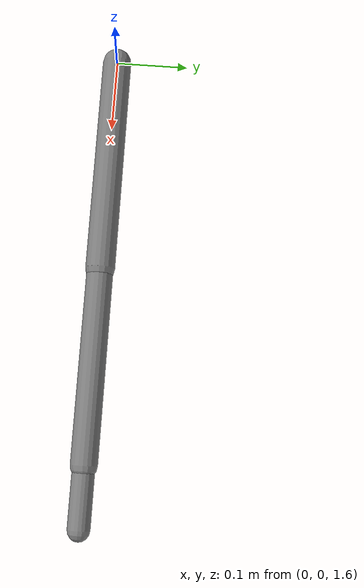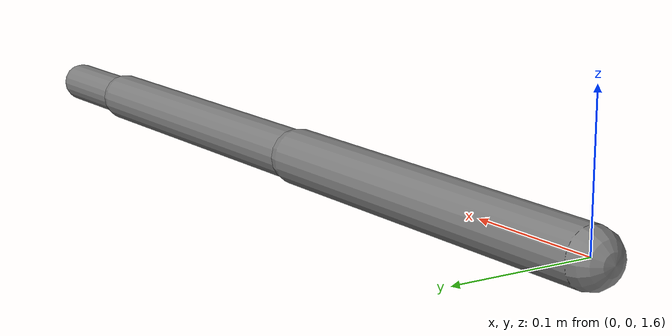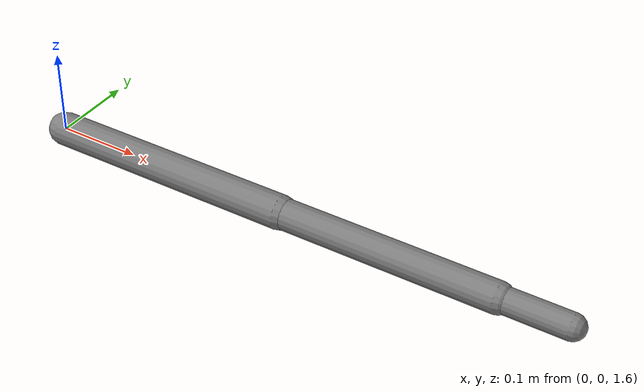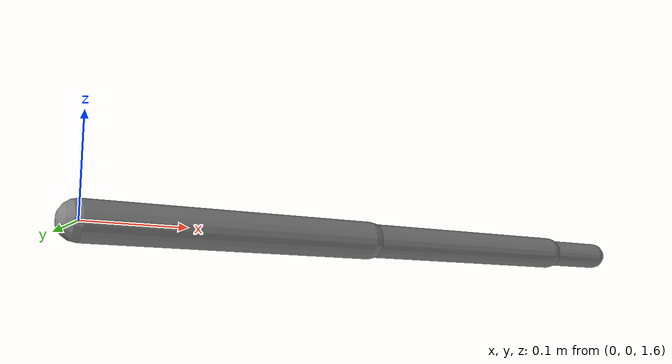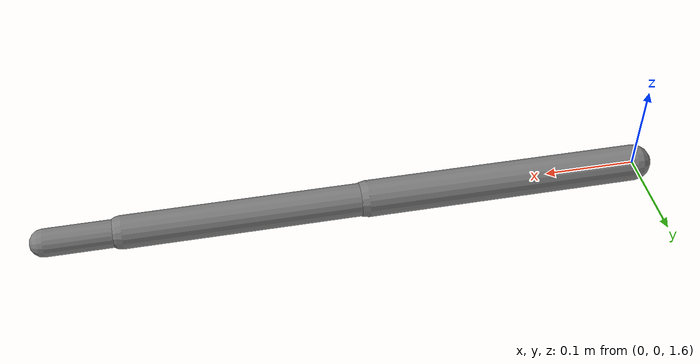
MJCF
<?xml version="1.0" encoding="utf-8"?>
<!--
  motion_mujoco_mjcf_4dof_arm_tall_SPEC.xml
  =======================================
  Tall-shoulder variant of motion_mujoco_mjcf_4dof_arm_SPEC.xml (shoulder_mount z = 1.60 m).
-->
<mujoco model="dart_robot_4dof_arm_TALL_SPEC">
  <compiler angle="degree" inertiafromgeom="true"/>

  <option timestep="0.001" gravity="0 0 -9.81"/>

  <default>
    <joint limited="true" damping="0.1"/>
    <geom type="capsule" condim="1" friction="0.6 0.005 0.0001"/>
  </default>

  <asset/>

  <worldbody>
    <body name="shoulder_mount" pos="0 0 1.60">
      <site name="shoulder_origin" pos="0 0 0" size="0.01"/>
      <body name="yaw_link" pos="0 0 0">
        <geom name="yaw_hub_geom" type="sphere" size="0.008" mass="0.02" rgba="0.3 0.3 0.3 0.3"/>
        <joint name="shoulder_yaw" type="hinge" axis="0 0 1" range="-55 55"/>
        <body name="upper_arm" pos="0 0 0">
          <joint name="shoulder" type="hinge" axis="0 1 0" range="-60 180"/>
          <geom name="upper_arm_geom" fromto="0 0 0 0.30 0 0" size="0.02" mass="2.1"/>
          <body name="forearm" pos="0.30 0 0">
            <joint name="elbow" type="hinge" axis="0 1 0" range="-145 0"/>
            <geom name="forearm_geom" fromto="0 0 0 0.26 0 0" size="0.018" mass="1.2"/>
            <body name="hand" pos="0.26 0 0">
              <joint name="wrist" type="hinge" axis="0 1 0" range="-70 70"/>
              <geom name="hand_geom" fromto="0 0 0 0.08 0 0" size="0.015" mass="0.4"/>
              <site name="release_site" pos="0.08 0 0" size="0.005" rgba="1 0 0 0.5"/>
            </body>
          </body>
        </body>
      </body>
    </body>
  </worldbody>

  <actuator>
    <motor name="tau_shoulder_yaw" joint="shoulder_yaw" gear="1" ctrllimited="true" ctrlrange="-55 55"/>
    <motor name="tau_shoulder" joint="shoulder" gear="1" ctrllimited="true" ctrlrange="-100 100"/>
    <motor name="tau_elbow" joint="elbow" gear="1" ctrllimited="true" ctrlrange="-70 70"/>
    <motor name="tau_wrist" joint="wrist" gear="1" ctrllimited="true" ctrlrange="-20 20"/>
  </actuator>

  <keyframe>
    <key name="cocked" qpos="0 -0.9599 -1.5708 -0.3491"/>
  </keyframe>
</mujoco>
